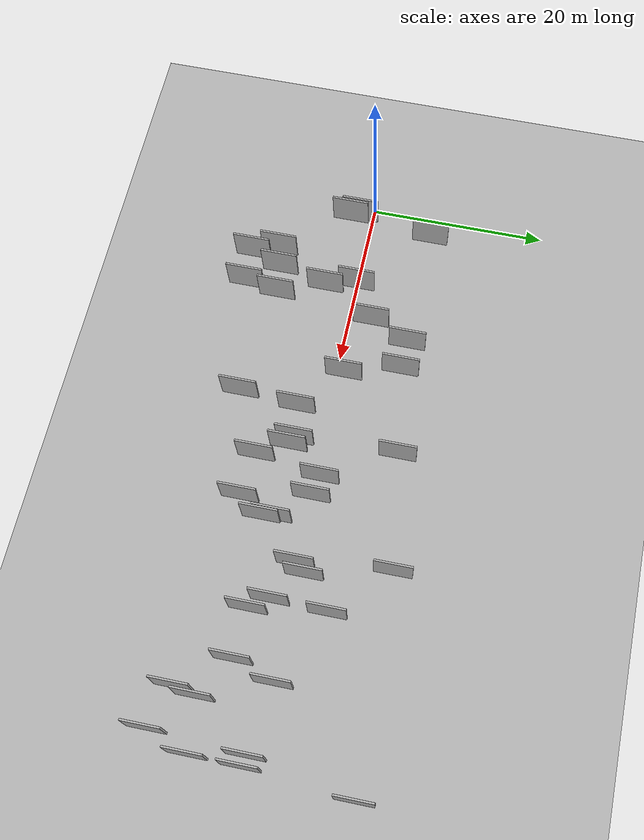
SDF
<?xml version="1.0" encoding="utf-8"?>

<sdf version="1.6">

   <world name="default">

      <gui fullscreen="0">

         <camera name="user_camera">

            <pose>-15 0 4.57585 0 0 0</pose>

            <view_controller>orbit</view_controller>

         </camera>

      </gui>

      <scene>

         <sky>

           <clouds>

             <speed>12</speed>

           </clouds>

         </sky>

         <ambient>0.4 0.4 0.4 1</ambient>

         <background>0.7 0.7 0.7 1</background>

         <shadows>1</shadows>

      </scene>

      <gravity>0 0 -9.8066</gravity>

      <magnetic_field>6e-06 2.3e-05 -4.2e-05</magnetic_field>

      <physics default="0" name="default_physics" type="ode">

         <ode>

            <solver>

               <type>quick</type>

               <iters>10</iters>

               <sor>1.0</sor>

               <use_dynamic_moi_rescaling>0</use_dynamic_moi_rescaling>

            </solver>

            <constraints>

               <cfm>0</cfm>

               <erp>0.2</erp>

               <contact_max_correcting_vel>100</contact_max_correcting_vel>

               <contact_surface_layer>0.001</contact_surface_layer>

            </constraints>

         </ode>

         <max_step_size>0.004</max_step_size>

         <real_time_factor>1</real_time_factor>

         <real_time_update_rate>250</real_time_update_rate>

      </physics>

      <light name="sun" type="directional">

         <cast_shadows>1</cast_shadows>

         <pose>0 0 10 0 0 0</pose>

         <diffuse>0.8 0.8 0.8 1</diffuse>

         <specular>0.2 0.2 0.2 1</specular>

         <attenuation>

            <range>1000</range>

            <constant>0.9</constant>

            <linear>0.01</linear>

            <quadratic>0.001</quadratic>

         </attenuation>

         <direction>-0.5 0.1 -0.9</direction>

      </light>

      <include>

         <name>ground_plane_1</name>

         <uri>model://HANNAS_ground_plane</uri>

         <pose>0 0 0  0 0 0</pose>

      </include>

      <include>

         <name>ground_plane_2</name>

         <uri>model://HANNAS_ground_plane</uri>

         <pose>100 0 0  0 0 0</pose>

      </include>

      <model name="HANNAS_wall_1">

         <static>1</static>

         <pose frame="">16.0945 -7.8328 5.0 0.000000 0.000000 1.570796</pose>

         <link name="link">

            <pose frame="">0 0 2.00 0 0 0</pose>

            <collision name="collision">

               <geometry>

                  <box>

                     <size>4.00 0.2 4.00</size>

                  </box>

               </geometry>

               <max_contacts>10</max_contacts>

               <surface>

                  <contact>

                     <ode/>

                  </contact>

                  <bounce/>

                  <friction>

                     <torsional>

                        <ode/>

                     </torsional>

                     <ode/>

                  </friction>

               </surface>

            </collision>

            <visual name="visual">

               <cast_shadows>0</cast_shadows>

               <geometry>

                  <box>

                     <size>4.00 0.2 4.00</size>

                  </box>

               </geometry>

               <material>

                  <script>

                     <uri>model://HANNAS_wall/materials/scripts</uri>

                     <uri>model://HANNAS_wall/materials/textures</uri>

                     <name>vrc/HANNAS_wall</name>

                  </script>

               </material>

            </visual>

            <self_collide>0</self_collide>

            <enable_wind>0</enable_wind>

            <kinematic>0</kinematic>

         </link>

      </model>

      <model name="HANNAS_wall_2">

         <static>1</static>

         <pose frame="">67.0826 11.6409 5.0 0.000000 0.000000 1.570796</pose>

         <link name="link">

            <pose frame="">0 0 2.00 0 0 0</pose>

            <collision name="collision">

               <geometry>

                  <box>

                     <size>4.00 0.2 4.00</size>

                  </box>

               </geometry>

               <max_contacts>10</max_contacts>

               <surface>

                  <contact>

                     <ode/>

                  </contact>

                  <bounce/>

                  <friction>

                     <torsional>

                        <ode/>

                     </torsional>

                     <ode/>

                  </friction>

               </surface>

            </collision>

            <visual name="visual">

               <cast_shadows>0</cast_shadows>

               <geometry>

                  <box>

                     <size>4.00 0.2 4.00</size>

                  </box>

               </geometry>

               <material>

                  <script>

                     <uri>model://HANNAS_wall/materials/scripts</uri>

                     <uri>model://HANNAS_wall/materials/textures</uri>

                     <name>vrc/HANNAS_wall</name>

                  </script>

               </material>

            </visual>

            <self_collide>0</self_collide>

            <enable_wind>0</enable_wind>

            <kinematic>0</kinematic>

         </link>

      </model>

      <model name="HANNAS_wall_3">

         <static>1</static>

         <pose frame="">66.0723 -4.7646 5.0 0.000000 0.000000 1.570796</pose>

         <link name="link">

            <pose frame="">0 0 2.00 0 0 0</pose>

            <collision name="collision">

               <geometry>

                  <box>

                     <size>4.00 0.2 4.00</size>

                  </box>

               </geometry>

               <max_contacts>10</max_contacts>

               <surface>

                  <contact>

                     <ode/>

                  </contact>

                  <bounce/>

                  <friction>

                     <torsional>

                        <ode/>

                     </torsional>

                     <ode/>

                  </friction>

               </surface>

            </collision>

            <visual name="visual">

               <cast_shadows>0</cast_shadows>

               <geometry>

                  <box>

                     <size>4.00 0.2 4.00</size>

                  </box>

               </geometry>

               <material>

                  <script>

                     <uri>model://HANNAS_wall/materials/scripts</uri>

                     <uri>model://HANNAS_wall/materials/textures</uri>

                     <name>vrc/HANNAS_wall</name>

                  </script>

               </material>

            </visual>

            <self_collide>0</self_collide>

            <enable_wind>0</enable_wind>

            <kinematic>0</kinematic>

         </link>

      </model>

      <model name="HANNAS_wall_4">

         <static>1</static>

         <pose frame="">65.0836 0.7340 5.0 0.000000 0.000000 1.570796</pose>

         <link name="link">

            <pose frame="">0 0 2.00 0 0 0</pose>

            <collision name="collision">

               <geometry>

                  <box>

                     <size>4.00 0.2 4.00</size>

                  </box>

               </geometry>

               <max_contacts>10</max_contacts>

               <surface>

                  <contact>

                     <ode/>

                  </contact>

                  <bounce/>

                  <friction>

                     <torsional>

                        <ode/>

                     </torsional>

                     <ode/>

                  </friction>

               </surface>

            </collision>

            <visual name="visual">

               <cast_shadows>0</cast_shadows>

               <geometry>

                  <box>

                     <size>4.00 0.2 4.00</size>

                  </box>

               </geometry>

               <material>

                  <script>

                     <uri>model://HANNAS_wall/materials/scripts</uri>

                     <uri>model://HANNAS_wall/materials/textures</uri>

                     <name>vrc/HANNAS_wall</name>

                  </script>

               </material>

            </visual>

            <self_collide>0</self_collide>

            <enable_wind>0</enable_wind>

            <kinematic>0</kinematic>

         </link>

      </model>

      <model name="HANNAS_wall_5">

         <static>1</static>

         <pose frame="">60.6381 -5.4493 5.0 0.000000 0.000000 1.570796</pose>

         <link name="link">

            <pose frame="">0 0 2.00 0 0 0</pose>

            <collision name="collision">

               <geometry>

                  <box>

                     <size>4.00 0.2 4.00</size>

                  </box>

               </geometry>

               <max_contacts>10</max_contacts>

               <surface>

                  <contact>

                     <ode/>

                  </contact>

                  <bounce/>

                  <friction>

                     <torsional>

                        <ode/>

                     </torsional>

                     <ode/>

                  </friction>

               </surface>

            </collision>

            <visual name="visual">

               <cast_shadows>0</cast_shadows>

               <geometry>

                  <box>

                     <size>4.00 0.2 4.00</size>

                  </box>

               </geometry>

               <material>

                  <script>

                     <uri>model://HANNAS_wall/materials/scripts</uri>

                     <uri>model://HANNAS_wall/materials/textures</uri>

                     <name>vrc/HANNAS_wall</name>

                  </script>

               </material>

            </visual>

            <self_collide>0</self_collide>

            <enable_wind>0</enable_wind>

            <kinematic>0</kinematic>

         </link>

      </model>

      <model name="HANNAS_wall_6">

         <static>1</static>

         <pose frame="">66.1527 0.4780 5.0 0.000000 0.000000 1.570796</pose>

         <link name="link">

            <pose frame="">0 0 2.00 0 0 0</pose>

            <collision name="collision">

               <geometry>

                  <box>

                     <size>4.00 0.2 4.00</size>

                  </box>

               </geometry>

               <max_contacts>10</max_contacts>

               <surface>

                  <contact>

                     <ode/>

                  </contact>

                  <bounce/>

                  <friction>

                     <torsional>

                        <ode/>

                     </torsional>

                     <ode/>

                  </friction>

               </surface>

            </collision>

            <visual name="visual">

               <cast_shadows>0</cast_shadows>

               <geometry>

                  <box>

                     <size>4.00 0.2 4.00</size>

                  </box>

               </geometry>

               <material>

                  <script>

                     <uri>model://HANNAS_wall/materials/scripts</uri>

                     <uri>model://HANNAS_wall/materials/textures</uri>

                     <name>vrc/HANNAS_wall</name>

                  </script>

               </material>

            </visual>

            <self_collide>0</self_collide>

            <enable_wind>0</enable_wind>

            <kinematic>0</kinematic>

         </link>

      </model>

      <model name="HANNAS_wall_7">

         <static>1</static>

         <pose frame="">35.2611 -5.5364 5.0 0.000000 0.000000 1.570796</pose>

         <link name="link">

            <pose frame="">0 0 2.00 0 0 0</pose>

            <collision name="collision">

               <geometry>

                  <box>

                     <size>4.00 0.2 4.00</size>

                  </box>

               </geometry>

               <max_contacts>10</max_contacts>

               <surface>

                  <contact>

                     <ode/>

                  </contact>

                  <bounce/>

                  <friction>

                     <torsional>

                        <ode/>

                     </torsional>

                     <ode/>

                  </friction>

               </surface>

            </collision>

            <visual name="visual">

               <cast_shadows>0</cast_shadows>

               <geometry>

                  <box>

                     <size>4.00 0.2 4.00</size>

                  </box>

               </geometry>

               <material>

                  <script>

                     <uri>model://HANNAS_wall/materials/scripts</uri>

                     <uri>model://HANNAS_wall/materials/textures</uri>

                     <name>vrc/HANNAS_wall</name>

                  </script>

               </material>

            </visual>

            <self_collide>0</self_collide>

            <enable_wind>0</enable_wind>

            <kinematic>0</kinematic>

         </link>

      </model>

      <model name="HANNAS_wall_8">

         <static>1</static>

         <pose frame="">44.7890 10.9294 5.0 0.000000 0.000000 1.570796</pose>

         <link name="link">

            <pose frame="">0 0 2.00 0 0 0</pose>

            <collision name="collision">

               <geometry>

                  <box>

                     <size>4.00 0.2 4.00</size>

                  </box>

               </geometry>

               <max_contacts>10</max_contacts>

               <surface>

                  <contact>

                     <ode/>

                  </contact>

                  <bounce/>

                  <friction>

                     <torsional>

                        <ode/>

                     </torsional>

                     <ode/>

                  </friction>

               </surface>

            </collision>

            <visual name="visual">

               <cast_shadows>0</cast_shadows>

               <geometry>

                  <box>

                     <size>4.00 0.2 4.00</size>

                  </box>

               </geometry>

               <material>

                  <script>

                     <uri>model://HANNAS_wall/materials/scripts</uri>

                     <uri>model://HANNAS_wall/materials/textures</uri>

                     <name>vrc/HANNAS_wall</name>

                  </script>

               </material>

            </visual>

            <self_collide>0</self_collide>

            <enable_wind>0</enable_wind>

            <kinematic>0</kinematic>

         </link>

      </model>

      <model name="HANNAS_wall_9">

         <static>1</static>

         <pose frame="">32.3290 8.9382 5.0 0.000000 0.000000 1.570796</pose>

         <link name="link">

            <pose frame="">0 0 2.00 0 0 0</pose>

            <collision name="collision">

               <geometry>

                  <box>

                     <size>4.00 0.2 4.00</size>

                  </box>

               </geometry>

               <max_contacts>10</max_contacts>

               <surface>

                  <contact>

                     <ode/>

                  </contact>

                  <bounce/>

                  <friction>

                     <torsional>

                        <ode/>

                     </torsional>

                     <ode/>

                  </friction>

               </surface>

            </collision>

            <visual name="visual">

               <cast_shadows>0</cast_shadows>

               <geometry>

                  <box>

                     <size>4.00 0.2 4.00</size>

                  </box>

               </geometry>

               <material>

                  <script>

                     <uri>model://HANNAS_wall/materials/scripts</uri>

                     <uri>model://HANNAS_wall/materials/textures</uri>

                     <name>vrc/HANNAS_wall</name>

                  </script>

               </material>

            </visual>

            <self_collide>0</self_collide>

            <enable_wind>0</enable_wind>

            <kinematic>0</kinematic>

         </link>

      </model>

      <model name="HANNAS_wall_10">

         <static>1</static>

         <pose frame="">49.9945 -0.5452 5.0 0.000000 0.000000 1.570796</pose>

         <link name="link">

            <pose frame="">0 0 2.00 0 0 0</pose>

            <collision name="collision">

               <geometry>

                  <box>

                     <size>4.00 0.2 4.00</size>

                  </box>

               </geometry>

               <max_contacts>10</max_contacts>

               <surface>

                  <contact>

                     <ode/>

                  </contact>

                  <bounce/>

                  <friction>

                     <torsional>

                        <ode/>

                     </torsional>

                     <ode/>

                  </friction>

               </surface>

            </collision>

            <visual name="visual">

               <cast_shadows>0</cast_shadows>

               <geometry>

                  <box>

                     <size>4.00 0.2 4.00</size>

                  </box>

               </geometry>

               <material>

                  <script>

                     <uri>model://HANNAS_wall/materials/scripts</uri>

                     <uri>model://HANNAS_wall/materials/textures</uri>

                     <name>vrc/HANNAS_wall</name>

                  </script>

               </material>

            </visual>

            <self_collide>0</self_collide>

            <enable_wind>0</enable_wind>

            <kinematic>0</kinematic>

         </link>

      </model>

      <model name="HANNAS_wall_11">

         <static>1</static>

         <pose frame="">29.0898 -2.5788 5.0 0.000000 0.000000 1.570796</pose>

         <link name="link">

            <pose frame="">0 0 2.00 0 0 0</pose>

            <collision name="collision">

               <geometry>

                  <box>

                     <size>4.00 0.2 4.00</size>

                  </box>

               </geometry>

               <max_contacts>10</max_contacts>

               <surface>

                  <contact>

                     <ode/>

                  </contact>

                  <bounce/>

                  <friction>

                     <torsional>

                        <ode/>

                     </torsional>

                     <ode/>

                  </friction>

               </surface>

            </collision>

            <visual name="visual">

               <cast_shadows>0</cast_shadows>

               <geometry>

                  <box>

                     <size>4.00 0.2 4.00</size>

                  </box>

               </geometry>

               <material>

                  <script>

                     <uri>model://HANNAS_wall/materials/scripts</uri>

                     <uri>model://HANNAS_wall/materials/textures</uri>

                     <name>vrc/HANNAS_wall</name>

                  </script>

               </material>

            </visual>

            <self_collide>0</self_collide>

            <enable_wind>0</enable_wind>

            <kinematic>0</kinematic>

         </link>

      </model>

      <model name="HANNAS_wall_12">

         <static>1</static>

         <pose frame="">14.1661 -2.7582 5.0 0.000000 0.000000 1.570796</pose>

         <link name="link">

            <pose frame="">0 0 2.00 0 0 0</pose>

            <collision name="collision">

               <geometry>

                  <box>

                     <size>4.00 0.2 4.00</size>

                  </box>

               </geometry>

               <max_contacts>10</max_contacts>

               <surface>

                  <contact>

                     <ode/>

                  </contact>

                  <bounce/>

                  <friction>

                     <torsional>

                        <ode/>

                     </torsional>

                     <ode/>

                  </friction>

               </surface>

            </collision>

            <visual name="visual">

               <cast_shadows>0</cast_shadows>

               <geometry>

                  <box>

                     <size>4.00 0.2 4.00</size>

                  </box>

               </geometry>

               <material>

                  <script>

                     <uri>model://HANNAS_wall/materials/scripts</uri>

                     <uri>model://HANNAS_wall/materials/textures</uri>

                     <name>vrc/HANNAS_wall</name>

                  </script>

               </material>

            </visual>

            <self_collide>0</self_collide>

            <enable_wind>0</enable_wind>

            <kinematic>0</kinematic>

         </link>

      </model>

      <model name="HANNAS_wall_13">

         <static>1</static>

         <pose frame="">19.4066 7.4536 5.0 0.000000 0.000000 1.570796</pose>

         <link name="link">

            <pose frame="">0 0 2.00 0 0 0</pose>

            <collision name="collision">

               <geometry>

                  <box>

                     <size>4.00 0.2 4.00</size>

                  </box>

               </geometry>

               <max_contacts>10</max_contacts>

               <surface>

                  <contact>

                     <ode/>

                  </contact>

                  <bounce/>

                  <friction>

                     <torsional>

                        <ode/>

                     </torsional>

                     <ode/>

                  </friction>

               </surface>

            </collision>

            <visual name="visual">

               <cast_shadows>0</cast_shadows>

               <geometry>

                  <box>

                     <size>4.00 0.2 4.00</size>

                  </box>

               </geometry>

               <material>

                  <script>

                     <uri>model://HANNAS_wall/materials/scripts</uri>

                     <uri>model://HANNAS_wall/materials/textures</uri>

                     <name>vrc/HANNAS_wall</name>

                  </script>

               </material>

            </visual>

            <self_collide>0</self_collide>

            <enable_wind>0</enable_wind>

            <kinematic>0</kinematic>

         </link>

      </model>

      <model name="HANNAS_wall_14">

         <static>1</static>

         <pose frame="">24.2511 1.4722 5.0 0.000000 0.000000 1.570796</pose>

         <link name="link">

            <pose frame="">0 0 2.00 0 0 0</pose>

            <collision name="collision">

               <geometry>

                  <box>

                     <size>4.00 0.2 4.00</size>

                  </box>

               </geometry>

               <max_contacts>10</max_contacts>

               <surface>

                  <contact>

                     <ode/>

                  </contact>

                  <bounce/>

                  <friction>

                     <torsional>

                        <ode/>

                     </torsional>

                     <ode/>

                  </friction>

               </surface>

            </collision>

            <visual name="visual">

               <cast_shadows>0</cast_shadows>

               <geometry>

                  <box>

                     <size>4.00 0.2 4.00</size>

                  </box>

               </geometry>

               <material>

                  <script>

                     <uri>model://HANNAS_wall/materials/scripts</uri>

                     <uri>model://HANNAS_wall/materials/textures</uri>

                     <name>vrc/HANNAS_wall</name>

                  </script>

               </material>

            </visual>

            <self_collide>0</self_collide>

            <enable_wind>0</enable_wind>

            <kinematic>0</kinematic>

         </link>

      </model>

      <model name="HANNAS_wall_15">

         <static>1</static>

         <pose frame="">22.6138 7.3447 5.0 0.000000 0.000000 1.570796</pose>

         <link name="link">

            <pose frame="">0 0 2.00 0 0 0</pose>

            <collision name="collision">

               <geometry>

                  <box>

                     <size>4.00 0.2 4.00</size>

                  </box>

               </geometry>

               <max_contacts>10</max_contacts>

               <surface>

                  <contact>

                     <ode/>

                  </contact>

                  <bounce/>

                  <friction>

                     <torsional>

                        <ode/>

                     </torsional>

                     <ode/>

                  </friction>

               </surface>

            </collision>

            <visual name="visual">

               <cast_shadows>0</cast_shadows>

               <geometry>

                  <box>

                     <size>4.00 0.2 4.00</size>

                  </box>

               </geometry>

               <material>

                  <script>

                     <uri>model://HANNAS_wall/materials/scripts</uri>

                     <uri>model://HANNAS_wall/materials/textures</uri>

                     <name>vrc/HANNAS_wall</name>

                  </script>

               </material>

            </visual>

            <self_collide>0</self_collide>

            <enable_wind>0</enable_wind>

            <kinematic>0</kinematic>

         </link>

      </model>

      <model name="HANNAS_wall_16">

         <static>1</static>

         <pose frame="">15.3647 -11.4975 5.0 0.000000 0.000000 1.570796</pose>

         <link name="link">

            <pose frame="">0 0 2.00 0 0 0</pose>

            <collision name="collision">

               <geometry>

                  <box>

                     <size>4.00 0.2 4.00</size>

                  </box>

               </geometry>

               <max_contacts>10</max_contacts>

               <surface>

                  <contact>

                     <ode/>

                  </contact>

                  <bounce/>

                  <friction>

                     <torsional>

                        <ode/>

                     </torsional>

                     <ode/>

                  </friction>

               </surface>

            </collision>

            <visual name="visual">

               <cast_shadows>0</cast_shadows>

               <geometry>

                  <box>

                     <size>4.00 0.2 4.00</size>

                  </box>

               </geometry>

               <material>

                  <script>

                     <uri>model://HANNAS_wall/materials/scripts</uri>

                     <uri>model://HANNAS_wall/materials/textures</uri>

                     <name>vrc/HANNAS_wall</name>

                  </script>

               </material>

            </visual>

            <self_collide>0</self_collide>

            <enable_wind>0</enable_wind>

            <kinematic>0</kinematic>

         </link>

      </model>

      <model name="HANNAS_wall_17">

         <static>1</static>

         <pose frame="">28.5305 -8.9166 5.0 0.000000 0.000000 1.570796</pose>

         <link name="link">

            <pose frame="">0 0 2.00 0 0 0</pose>

            <collision name="collision">

               <geometry>

                  <box>

                     <size>4.00 0.2 4.00</size>

                  </box>

               </geometry>

               <max_contacts>10</max_contacts>

               <surface>

                  <contact>

                     <ode/>

                  </contact>

                  <bounce/>

                  <friction>

                     <torsional>

                        <ode/>

                     </torsional>

                     <ode/>

                  </friction>

               </surface>

            </collision>

            <visual name="visual">

               <cast_shadows>0</cast_shadows>

               <geometry>

                  <box>

                     <size>4.00 0.2 4.00</size>

                  </box>

               </geometry>

               <material>

                  <script>

                     <uri>model://HANNAS_wall/materials/scripts</uri>

                     <uri>model://HANNAS_wall/materials/textures</uri>

                     <name>vrc/HANNAS_wall</name>

                  </script>

               </material>

            </visual>

            <self_collide>0</self_collide>

            <enable_wind>0</enable_wind>

            <kinematic>0</kinematic>

         </link>

      </model>

      <model name="HANNAS_wall_18">

         <static>1</static>

         <pose frame="">4.7193 -1.8702 5.0 0.000000 0.000000 1.570796</pose>

         <link name="link">

            <pose frame="">0 0 2.00 0 0 0</pose>

            <collision name="collision">

               <geometry>

                  <box>

                     <size>4.00 0.2 4.00</size>

                  </box>

               </geometry>

               <max_contacts>10</max_contacts>

               <surface>

                  <contact>

                     <ode/>

                  </contact>

                  <bounce/>

                  <friction>

                     <torsional>

                        <ode/>

                     </torsional>

                     <ode/>

                  </friction>

               </surface>

            </collision>

            <visual name="visual">

               <cast_shadows>0</cast_shadows>

               <geometry>

                  <box>

                     <size>4.00 0.2 4.00</size>

                  </box>

               </geometry>

               <material>

                  <script>

                     <uri>model://HANNAS_wall/materials/scripts</uri>

                     <uri>model://HANNAS_wall/materials/textures</uri>

                     <name>vrc/HANNAS_wall</name>

                  </script>

               </material>

            </visual>

            <self_collide>0</self_collide>

            <enable_wind>0</enable_wind>

            <kinematic>0</kinematic>

         </link>

      </model>

      <model name="HANNAS_wall_19">

         <static>1</static>

         <pose frame="">60.1111 -7.7408 5.0 0.000000 0.000000 1.570796</pose>

         <link name="link">

            <pose frame="">0 0 2.00 0 0 0</pose>

            <collision name="collision">

               <geometry>

                  <box>

                     <size>4.00 0.2 4.00</size>

                  </box>

               </geometry>

               <max_contacts>10</max_contacts>

               <surface>

                  <contact>

                     <ode/>

                  </contact>

                  <bounce/>

                  <friction>

                     <torsional>

                        <ode/>

                     </torsional>

                     <ode/>

                  </friction>

               </surface>

            </collision>

            <visual name="visual">

               <cast_shadows>0</cast_shadows>

               <geometry>

                  <box>

                     <size>4.00 0.2 4.00</size>

                  </box>

               </geometry>

               <material>

                  <script>

                     <uri>model://HANNAS_wall/materials/scripts</uri>

                     <uri>model://HANNAS_wall/materials/textures</uri>

                     <name>vrc/HANNAS_wall</name>

                  </script>

               </material>

            </visual>

            <self_collide>0</self_collide>

            <enable_wind>0</enable_wind>

            <kinematic>0</kinematic>

         </link>

      </model>

      <model name="HANNAS_wall_20">

         <static>1</static>

         <pose frame="">10.5820 -8.7851 5.0 0.000000 0.000000 1.570796</pose>

         <link name="link">

            <pose frame="">0 0 2.00 0 0 0</pose>

            <collision name="collision">

               <geometry>

                  <box>

                     <size>4.00 0.2 4.00</size>

                  </box>

               </geometry>

               <max_contacts>10</max_contacts>

               <surface>

                  <contact>

                     <ode/>

                  </contact>

                  <bounce/>

                  <friction>

                     <torsional>

                        <ode/>

                     </torsional>

                     <ode/>

                  </friction>

               </surface>

            </collision>

            <visual name="visual">

               <cast_shadows>0</cast_shadows>

               <geometry>

                  <box>

                     <size>4.00 0.2 4.00</size>

                  </box>

               </geometry>

               <material>

                  <script>

                     <uri>model://HANNAS_wall/materials/scripts</uri>

                     <uri>model://HANNAS_wall/materials/textures</uri>

                     <name>vrc/HANNAS_wall</name>

                  </script>

               </material>

            </visual>

            <self_collide>0</self_collide>

            <enable_wind>0</enable_wind>

            <kinematic>0</kinematic>

         </link>

      </model>

      <model name="HANNAS_wall_21">

         <static>1</static>

         <pose frame="">13.2404 0.5708 5.0 0.000000 0.000000 1.570796</pose>

         <link name="link">

            <pose frame="">0 0 2.00 0 0 0</pose>

            <collision name="collision">

               <geometry>

                  <box>

                     <size>4.00 0.2 4.00</size>

                  </box>

               </geometry>

               <max_contacts>10</max_contacts>

               <surface>

                  <contact>

                     <ode/>

                  </contact>

                  <bounce/>

                  <friction>

                     <torsional>

                        <ode/>

                     </torsional>

                     <ode/>

                  </friction>

               </surface>

            </collision>

            <visual name="visual">

               <cast_shadows>0</cast_shadows>

               <geometry>

                  <box>

                     <size>4.00 0.2 4.00</size>

                  </box>

               </geometry>

               <material>

                  <script>

                     <uri>model://HANNAS_wall/materials/scripts</uri>

                     <uri>model://HANNAS_wall/materials/textures</uri>

                     <name>vrc/HANNAS_wall</name>

                  </script>

               </material>

            </visual>

            <self_collide>0</self_collide>

            <enable_wind>0</enable_wind>

            <kinematic>0</kinematic>

         </link>

      </model>

      <model name="HANNAS_wall_22">

         <static>1</static>

         <pose frame="">36.3955 1.5743 5.0 0.000000 0.000000 1.570796</pose>

         <link name="link">

            <pose frame="">0 0 2.00 0 0 0</pose>

            <collision name="collision">

               <geometry>

                  <box>

                     <size>4.00 0.2 4.00</size>

                  </box>

               </geometry>

               <max_contacts>10</max_contacts>

               <surface>

                  <contact>

                     <ode/>

                  </contact>

                  <bounce/>

                  <friction>

                     <torsional>

                        <ode/>

                     </torsional>

                     <ode/>

                  </friction>

               </surface>

            </collision>

            <visual name="visual">

               <cast_shadows>0</cast_shadows>

               <geometry>

                  <box>

                     <size>4.00 0.2 4.00</size>

                  </box>

               </geometry>

               <material>

                  <script>

                     <uri>model://HANNAS_wall/materials/scripts</uri>

                     <uri>model://HANNAS_wall/materials/textures</uri>

                     <name>vrc/HANNAS_wall</name>

                  </script>

               </material>

            </visual>

            <self_collide>0</self_collide>

            <enable_wind>0</enable_wind>

            <kinematic>0</kinematic>

         </link>

      </model>

      <model name="HANNAS_wall_23">

         <static>1</static>

         <pose frame="">32.6828 -1.9590 5.0 0.000000 0.000000 1.570796</pose>

         <link name="link">

            <pose frame="">0 0 2.00 0 0 0</pose>

            <collision name="collision">

               <geometry>

                  <box>

                     <size>4.00 0.2 4.00</size>

                  </box>

               </geometry>

               <max_contacts>10</max_contacts>

               <surface>

                  <contact>

                     <ode/>

                  </contact>

                  <bounce/>

                  <friction>

                     <torsional>

                        <ode/>

                     </torsional>

                     <ode/>

                  </friction>

               </surface>

            </collision>

            <visual name="visual">

               <cast_shadows>0</cast_shadows>

               <geometry>

                  <box>

                     <size>4.00 0.2 4.00</size>

                  </box>

               </geometry>

               <material>

                  <script>

                     <uri>model://HANNAS_wall/materials/scripts</uri>

                     <uri>model://HANNAS_wall/materials/textures</uri>

                     <name>vrc/HANNAS_wall</name>

                  </script>

               </material>

            </visual>

            <self_collide>0</self_collide>

            <enable_wind>0</enable_wind>

            <kinematic>0</kinematic>

         </link>

      </model>

      <model name="HANNAS_wall_24">

         <static>1</static>

         <pose frame="">56.4819 -2.6963 5.0 0.000000 0.000000 1.570796</pose>

         <link name="link">

            <pose frame="">0 0 2.00 0 0 0</pose>

            <collision name="collision">

               <geometry>

                  <box>

                     <size>4.00 0.2 4.00</size>

                  </box>

               </geometry>

               <max_contacts>10</max_contacts>

               <surface>

                  <contact>

                     <ode/>

                  </contact>

                  <bounce/>

                  <friction>

                     <torsional>

                        <ode/>

                     </torsional>

                     <ode/>

                  </friction>

               </surface>

            </collision>

            <visual name="visual">

               <cast_shadows>0</cast_shadows>

               <geometry>

                  <box>

                     <size>4.00 0.2 4.00</size>

                  </box>

               </geometry>

               <material>

                  <script>

                     <uri>model://HANNAS_wall/materials/scripts</uri>

                     <uri>model://HANNAS_wall/materials/textures</uri>

                     <name>vrc/HANNAS_wall</name>

                  </script>

               </material>

            </visual>

            <self_collide>0</self_collide>

            <enable_wind>0</enable_wind>

            <kinematic>0</kinematic>

         </link>

      </model>

      <model name="HANNAS_wall_25">

         <static>1</static>

         <pose frame="">41.7163 -3.4673 5.0 0.000000 0.000000 1.570796</pose>

         <link name="link">

            <pose frame="">0 0 2.00 0 0 0</pose>

            <collision name="collision">

               <geometry>

                  <box>

                     <size>4.00 0.2 4.00</size>

                  </box>

               </geometry>

               <max_contacts>10</max_contacts>

               <surface>

                  <contact>

                     <ode/>

                  </contact>

                  <bounce/>

                  <friction>

                     <torsional>

                        <ode/>

                     </torsional>

                     <ode/>

                  </friction>

               </surface>

            </collision>

            <visual name="visual">

               <cast_shadows>0</cast_shadows>

               <geometry>

                  <box>

                     <size>4.00 0.2 4.00</size>

                  </box>

               </geometry>

               <material>

                  <script>

                     <uri>model://HANNAS_wall/materials/scripts</uri>

                     <uri>model://HANNAS_wall/materials/textures</uri>

                     <name>vrc/HANNAS_wall</name>

                  </script>

               </material>

            </visual>

            <self_collide>0</self_collide>

            <enable_wind>0</enable_wind>

            <kinematic>0</kinematic>

         </link>

      </model>

      <model name="HANNAS_wall_26">

         <static>1</static>

         <pose frame="">33.5221 -2.4747 5.0 0.000000 0.000000 1.570796</pose>

         <link name="link">

            <pose frame="">0 0 2.00 0 0 0</pose>

            <collision name="collision">

               <geometry>

                  <box>

                     <size>4.00 0.2 4.00</size>

                  </box>

               </geometry>

               <max_contacts>10</max_contacts>

               <surface>

                  <contact>

                     <ode/>

                  </contact>

                  <bounce/>

                  <friction>

                     <torsional>

                        <ode/>

                     </torsional>

                     <ode/>

                  </friction>

               </surface>

            </collision>

            <visual name="visual">

               <cast_shadows>0</cast_shadows>

               <geometry>

                  <box>

                     <size>4.00 0.2 4.00</size>

                  </box>

               </geometry>

               <material>

                  <script>

                     <uri>model://HANNAS_wall/materials/scripts</uri>

                     <uri>model://HANNAS_wall/materials/textures</uri>

                     <name>vrc/HANNAS_wall</name>

                  </script>

               </material>

            </visual>

            <self_collide>0</self_collide>

            <enable_wind>0</enable_wind>

            <kinematic>0</kinematic>

         </link>

      </model>

      <model name="HANNAS_wall_27">

         <static>1</static>

         <pose frame="">12.9175 -8.1788 5.0 0.000000 0.000000 1.570796</pose>

         <link name="link">

            <pose frame="">0 0 2.00 0 0 0</pose>

            <collision name="collision">

               <geometry>

                  <box>

                     <size>4.00 0.2 4.00</size>

                  </box>

               </geometry>

               <max_contacts>10</max_contacts>

               <surface>

                  <contact>

                     <ode/>

                  </contact>

                  <bounce/>

                  <friction>

                     <torsional>

                        <ode/>

                     </torsional>

                     <ode/>

                  </friction>

               </surface>

            </collision>

            <visual name="visual">

               <cast_shadows>0</cast_shadows>

               <geometry>

                  <box>

                     <size>4.00 0.2 4.00</size>

                  </box>

               </geometry>

               <material>

                  <script>

                     <uri>model://HANNAS_wall/materials/scripts</uri>

                     <uri>model://HANNAS_wall/materials/textures</uri>

                     <name>vrc/HANNAS_wall</name>

                  </script>

               </material>

            </visual>

            <self_collide>0</self_collide>

            <enable_wind>0</enable_wind>

            <kinematic>0</kinematic>

         </link>

      </model>

      <model name="HANNAS_wall_28">

         <static>1</static>

         <pose frame="">4.3893 -0.8068 5.0 0.000000 0.000000 1.570796</pose>

         <link name="link">

            <pose frame="">0 0 2.00 0 0 0</pose>

            <collision name="collision">

               <geometry>

                  <box>

                     <size>4.00 0.2 4.00</size>

                  </box>

               </geometry>

               <max_contacts>10</max_contacts>

               <surface>

                  <contact>

                     <ode/>

                  </contact>

                  <bounce/>

                  <friction>

                     <torsional>

                        <ode/>

                     </torsional>

                     <ode/>

                  </friction>

               </surface>

            </collision>

            <visual name="visual">

               <cast_shadows>0</cast_shadows>

               <geometry>

                  <box>

                     <size>4.00 0.2 4.00</size>

                  </box>

               </geometry>

               <material>

                  <script>

                     <uri>model://HANNAS_wall/materials/scripts</uri>

                     <uri>model://HANNAS_wall/materials/textures</uri>

                     <name>vrc/HANNAS_wall</name>

                  </script>

               </material>

            </visual>

            <self_collide>0</self_collide>

            <enable_wind>0</enable_wind>

            <kinematic>0</kinematic>

         </link>

      </model>

      <model name="HANNAS_wall_29">

         <static>1</static>

         <pose frame="">38.5660 1.1227 5.0 0.000000 0.000000 1.570796</pose>

         <link name="link">

            <pose frame="">0 0 2.00 0 0 0</pose>

            <collision name="collision">

               <geometry>

                  <box>

                     <size>4.00 0.2 4.00</size>

                  </box>

               </geometry>

               <max_contacts>10</max_contacts>

               <surface>

                  <contact>

                     <ode/>

                  </contact>

                  <bounce/>

                  <friction>

                     <torsional>

                        <ode/>

                     </torsional>

                     <ode/>

                  </friction>

               </surface>

            </collision>

            <visual name="visual">

               <cast_shadows>0</cast_shadows>

               <geometry>

                  <box>

                     <size>4.00 0.2 4.00</size>

                  </box>

               </geometry>

               <material>

                  <script>

                     <uri>model://HANNAS_wall/materials/scripts</uri>

                     <uri>model://HANNAS_wall/materials/textures</uri>

                     <name>vrc/HANNAS_wall</name>

                  </script>

               </material>

            </visual>

            <self_collide>0</self_collide>

            <enable_wind>0</enable_wind>

            <kinematic>0</kinematic>

         </link>

      </model>

      <model name="HANNAS_wall_30">

         <static>1</static>

         <pose frame="">5.8256 7.4774 5.0 0.000000 0.000000 1.570796</pose>

         <link name="link">

            <pose frame="">0 0 2.00 0 0 0</pose>

            <collision name="collision">

               <geometry>

                  <box>

                     <size>4.00 0.2 4.00</size>

                  </box>

               </geometry>

               <max_contacts>10</max_contacts>

               <surface>

                  <contact>

                     <ode/>

                  </contact>

                  <bounce/>

                  <friction>

                     <torsional>

                        <ode/>

                     </torsional>

                     <ode/>

                  </friction>

               </surface>

            </collision>

            <visual name="visual">

               <cast_shadows>0</cast_shadows>

               <geometry>

                  <box>

                     <size>4.00 0.2 4.00</size>

                  </box>

               </geometry>

               <material>

                  <script>

                     <uri>model://HANNAS_wall/materials/scripts</uri>

                     <uri>model://HANNAS_wall/materials/textures</uri>

                     <name>vrc/HANNAS_wall</name>

                  </script>

               </material>

            </visual>

            <self_collide>0</self_collide>

            <enable_wind>0</enable_wind>

            <kinematic>0</kinematic>

         </link>

      </model>

      <model name="HANNAS_wall_31">

         <static>1</static>

         <pose frame="">46.8008 2.2310 5.0 0.000000 0.000000 1.570796</pose>

         <link name="link">

            <pose frame="">0 0 2.00 0 0 0</pose>

            <collision name="collision">

               <geometry>

                  <box>

                     <size>4.00 0.2 4.00</size>

                  </box>

               </geometry>

               <max_contacts>10</max_contacts>

               <surface>

                  <contact>

                     <ode/>

                  </contact>

                  <bounce/>

                  <friction>

                     <torsional>

                        <ode/>

                     </torsional>

                     <ode/>

                  </friction>

               </surface>

            </collision>

            <visual name="visual">

               <cast_shadows>0</cast_shadows>

               <geometry>

                  <box>

                     <size>4.00 0.2 4.00</size>

                  </box>

               </geometry>

               <material>

                  <script>

                     <uri>model://HANNAS_wall/materials/scripts</uri>

                     <uri>model://HANNAS_wall/materials/textures</uri>

                     <name>vrc/HANNAS_wall</name>

                  </script>

               </material>

            </visual>

            <self_collide>0</self_collide>

            <enable_wind>0</enable_wind>

            <kinematic>0</kinematic>

         </link>

      </model>

      <model name="HANNAS_wall_32">

         <static>1</static>

         <pose frame="">51.2877 -2.4725 5.0 0.000000 0.000000 1.570796</pose>

         <link name="link">

            <pose frame="">0 0 2.00 0 0 0</pose>

            <collision name="collision">

               <geometry>

                  <box>

                     <size>4.00 0.2 4.00</size>

                  </box>

               </geometry>

               <max_contacts>10</max_contacts>

               <surface>

                  <contact>

                     <ode/>

                  </contact>

                  <bounce/>

                  <friction>

                     <torsional>

                        <ode/>

                     </torsional>

                     <ode/>

                  </friction>

               </surface>

            </collision>

            <visual name="visual">

               <cast_shadows>0</cast_shadows>

               <geometry>

                  <box>

                     <size>4.00 0.2 4.00</size>

                  </box>

               </geometry>

               <material>

                  <script>

                     <uri>model://HANNAS_wall/materials/scripts</uri>

                     <uri>model://HANNAS_wall/materials/textures</uri>

                     <name>vrc/HANNAS_wall</name>

                  </script>

               </material>

            </visual>

            <self_collide>0</self_collide>

            <enable_wind>0</enable_wind>

            <kinematic>0</kinematic>

         </link>

      </model>

      <model name="HANNAS_wall_33">

         <static>1</static>

         <pose frame="">17.4009 3.0408 5.0 0.000000 0.000000 1.570796</pose>

         <link name="link">

            <pose frame="">0 0 2.00 0 0 0</pose>

            <collision name="collision">

               <geometry>

                  <box>

                     <size>4.00 0.2 4.00</size>

                  </box>

               </geometry>

               <max_contacts>10</max_contacts>

               <surface>

                  <contact>

                     <ode/>

                  </contact>

                  <bounce/>

                  <friction>

                     <torsional>

                        <ode/>

                     </torsional>

                     <ode/>

                  </friction>

               </surface>

            </collision>

            <visual name="visual">

               <cast_shadows>0</cast_shadows>

               <geometry>

                  <box>

                     <size>4.00 0.2 4.00</size>

                  </box>

               </geometry>

               <material>

                  <script>

                     <uri>model://HANNAS_wall/materials/scripts</uri>

                     <uri>model://HANNAS_wall/materials/textures</uri>

                     <name>vrc/HANNAS_wall</name>

                  </script>

               </material>

            </visual>

            <self_collide>0</self_collide>

            <enable_wind>0</enable_wind>

            <kinematic>0</kinematic>

         </link>

      </model>

      <model name="HANNAS_wall_34">

         <static>1</static>

         <pose frame="">57.9463 1.6884 5.0 0.000000 0.000000 1.570796</pose>

         <link name="link">

            <pose frame="">0 0 2.00 0 0 0</pose>

            <collision name="collision">

               <geometry>

                  <box>

                     <size>4.00 0.2 4.00</size>

                  </box>

               </geometry>

               <max_contacts>10</max_contacts>

               <surface>

                  <contact>

                     <ode/>

                  </contact>

                  <bounce/>

                  <friction>

                     <torsional>

                        <ode/>

                     </torsional>

                     <ode/>

                  </friction>

               </surface>

            </collision>

            <visual name="visual">

               <cast_shadows>0</cast_shadows>

               <geometry>

                  <box>

                     <size>4.00 0.2 4.00</size>

                  </box>

               </geometry>

               <material>

                  <script>

                     <uri>model://HANNAS_wall/materials/scripts</uri>

                     <uri>model://HANNAS_wall/materials/textures</uri>

                     <name>vrc/HANNAS_wall</name>

                  </script>

               </material>

            </visual>

            <self_collide>0</self_collide>

            <enable_wind>0</enable_wind>

            <kinematic>0</kinematic>

         </link>

      </model>

      <model name="HANNAS_wall_35">

         <static>1</static>

         <pose frame="">50.1994 5.3608 5.0 0.000000 0.000000 1.570796</pose>

         <link name="link">

            <pose frame="">0 0 2.00 0 0 0</pose>

            <collision name="collision">

               <geometry>

                  <box>

                     <size>4.00 0.2 4.00</size>

                  </box>

               </geometry>

               <max_contacts>10</max_contacts>

               <surface>

                  <contact>

                     <ode/>

                  </contact>

                  <bounce/>

                  <friction>

                     <torsional>

                        <ode/>

                     </torsional>

                     <ode/>

                  </friction>

               </surface>

            </collision>

            <visual name="visual">

               <cast_shadows>0</cast_shadows>

               <geometry>

                  <box>

                     <size>4.00 0.2 4.00</size>

                  </box>

               </geometry>

               <material>

                  <script>

                     <uri>model://HANNAS_wall/materials/scripts</uri>

                     <uri>model://HANNAS_wall/materials/textures</uri>

                     <name>vrc/HANNAS_wall</name>

                  </script>

               </material>

            </visual>

            <self_collide>0</self_collide>

            <enable_wind>0</enable_wind>

            <kinematic>0</kinematic>

         </link>

      </model>

      <model name="HANNAS_wall_36">

         <static>1</static>

         <pose frame="">45.8178 1.1015 5.0 0.000000 0.000000 1.570796</pose>

         <link name="link">

            <pose frame="">0 0 2.00 0 0 0</pose>

            <collision name="collision">

               <geometry>

                  <box>

                     <size>4.00 0.2 4.00</size>

                  </box>

               </geometry>

               <max_contacts>10</max_contacts>

               <surface>

                  <contact>

                     <ode/>

                  </contact>

                  <bounce/>

                  <friction>

                     <torsional>

                        <ode/>

                     </torsional>

                     <ode/>

                  </friction>

               </surface>

            </collision>

            <visual name="visual">

               <cast_shadows>0</cast_shadows>

               <geometry>

                  <box>

                     <size>4.00 0.2 4.00</size>

                  </box>

               </geometry>

               <material>

                  <script>

                     <uri>model://HANNAS_wall/materials/scripts</uri>

                     <uri>model://HANNAS_wall/materials/textures</uri>

                     <name>vrc/HANNAS_wall</name>

                  </script>

               </material>

            </visual>

            <self_collide>0</self_collide>

            <enable_wind>0</enable_wind>

            <kinematic>0</kinematic>

         </link>

      </model>

      <model name="HANNAS_wall_37">

         <static>1</static>

         <pose frame="">11.5445 -11.5978 5.0 0.000000 0.000000 1.570796</pose>

         <link name="link">

            <pose frame="">0 0 2.00 0 0 0</pose>

            <collision name="collision">

               <geometry>

                  <box>

                     <size>4.00 0.2 4.00</size>

                  </box>

               </geometry>

               <max_contacts>10</max_contacts>

               <surface>

                  <contact>

                     <ode/>

                  </contact>

                  <bounce/>

                  <friction>

                     <torsional>

                        <ode/>

                     </torsional>

                     <ode/>

                  </friction>

               </surface>

            </collision>

            <visual name="visual">

               <cast_shadows>0</cast_shadows>

               <geometry>

                  <box>

                     <size>4.00 0.2 4.00</size>

                  </box>

               </geometry>

               <material>

                  <script>

                     <uri>model://HANNAS_wall/materials/scripts</uri>

                     <uri>model://HANNAS_wall/materials/textures</uri>

                     <name>vrc/HANNAS_wall</name>

                  </script>

               </material>

            </visual>

            <self_collide>0</self_collide>

            <enable_wind>0</enable_wind>

            <kinematic>0</kinematic>

         </link>

      </model>

      <model name="HANNAS_wall_38">

         <static>1</static>

         <pose frame="">41.4874 -2.2885 5.0 0.000000 0.000000 1.570796</pose>

         <link name="link">

            <pose frame="">0 0 2.00 0 0 0</pose>

            <collision name="collision">

               <geometry>

                  <box>

                     <size>4.00 0.2 4.00</size>

                  </box>

               </geometry>

               <max_contacts>10</max_contacts>

               <surface>

                  <contact>

                     <ode/>

                  </contact>

                  <bounce/>

                  <friction>

                     <torsional>

                        <ode/>

                     </torsional>

                     <ode/>

                  </friction>

               </surface>

            </collision>

            <visual name="visual">

               <cast_shadows>0</cast_shadows>

               <geometry>

                  <box>

                     <size>4.00 0.2 4.00</size>

                  </box>

               </geometry>

               <material>

                  <script>

                     <uri>model://HANNAS_wall/materials/scripts</uri>

                     <uri>model://HANNAS_wall/materials/textures</uri>

                     <name>vrc/HANNAS_wall</name>

                  </script>

               </material>

            </visual>

            <self_collide>0</self_collide>

            <enable_wind>0</enable_wind>

            <kinematic>0</kinematic>

         </link>

      </model>

      <model name="HANNAS_wall_39">

         <static>1</static>

         <pose frame="">64.5010 -9.2091 5.0 0.000000 0.000000 1.570796</pose>

         <link name="link">

            <pose frame="">0 0 2.00 0 0 0</pose>

            <collision name="collision">

               <geometry>

                  <box>

                     <size>4.00 0.2 4.00</size>

                  </box>

               </geometry>

               <max_contacts>10</max_contacts>

               <surface>

                  <contact>

                     <ode/>

                  </contact>

                  <bounce/>

                  <friction>

                     <torsional>

                        <ode/>

                     </torsional>

                     <ode/>

                  </friction>

               </surface>

            </collision>

            <visual name="visual">

               <cast_shadows>0</cast_shadows>

               <geometry>

                  <box>

                     <size>4.00 0.2 4.00</size>

                  </box>

               </geometry>

               <material>

                  <script>

                     <uri>model://HANNAS_wall/materials/scripts</uri>

                     <uri>model://HANNAS_wall/materials/textures</uri>

                     <name>vrc/HANNAS_wall</name>

                  </script>

               </material>

            </visual>

            <self_collide>0</self_collide>

            <enable_wind>0</enable_wind>

            <kinematic>0</kinematic>

         </link>

      </model>

      <model name="HANNAS_wall_40">

         <static>1</static>

         <pose frame="">40.0254 -6.1178 5.0 0.000000 0.000000 1.570796</pose>

         <link name="link">

            <pose frame="">0 0 2.00 0 0 0</pose>

            <collision name="collision">

               <geometry>

                  <box>

                     <size>4.00 0.2 4.00</size>

                  </box>

               </geometry>

               <max_contacts>10</max_contacts>

               <surface>

                  <contact>

                     <ode/>

                  </contact>

                  <bounce/>

                  <friction>

                     <torsional>

                        <ode/>

                     </torsional>

                     <ode/>

                  </friction>

               </surface>

            </collision>

            <visual name="visual">

               <cast_shadows>0</cast_shadows>

               <geometry>

                  <box>

                     <size>4.00 0.2 4.00</size>

                  </box>

               </geometry>

               <material>

                  <script>

                     <uri>model://HANNAS_wall/materials/scripts</uri>

                     <uri>model://HANNAS_wall/materials/textures</uri>

                     <name>vrc/HANNAS_wall</name>

                  </script>

               </material>

            </visual>

            <self_collide>0</self_collide>

            <enable_wind>0</enable_wind>

            <kinematic>0</kinematic>

         </link>

      </model>

   </world>

</sdf>
